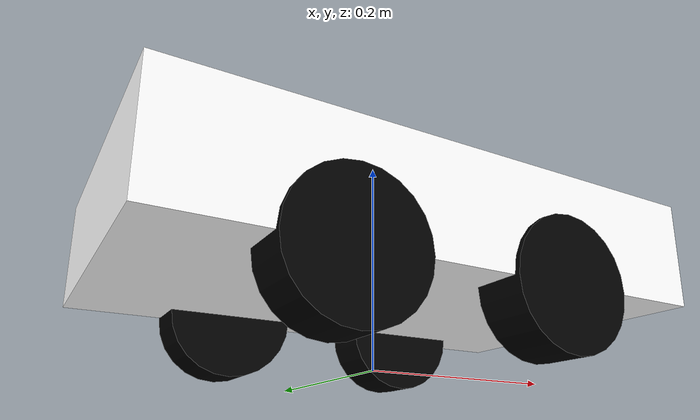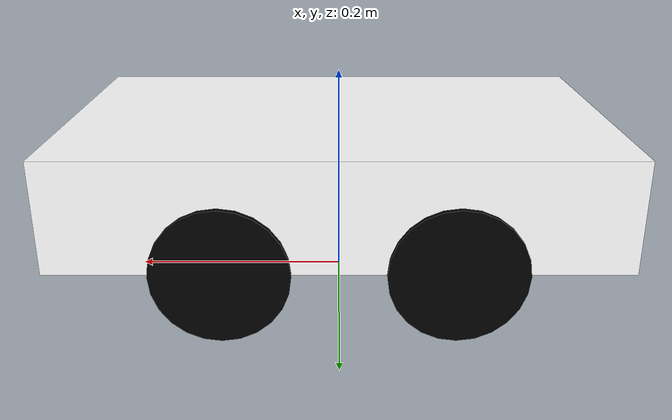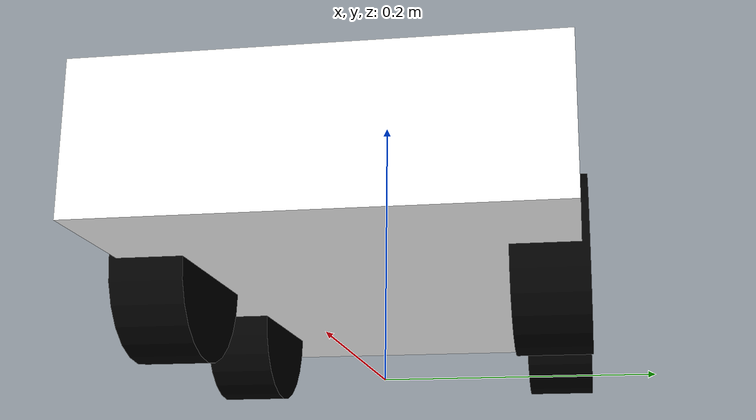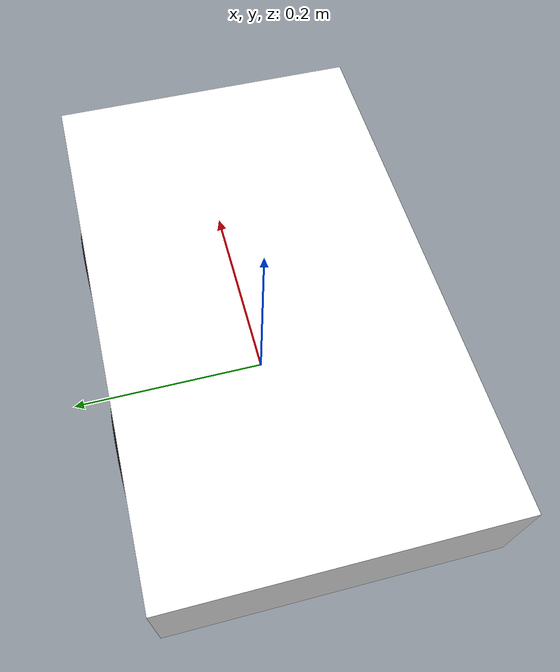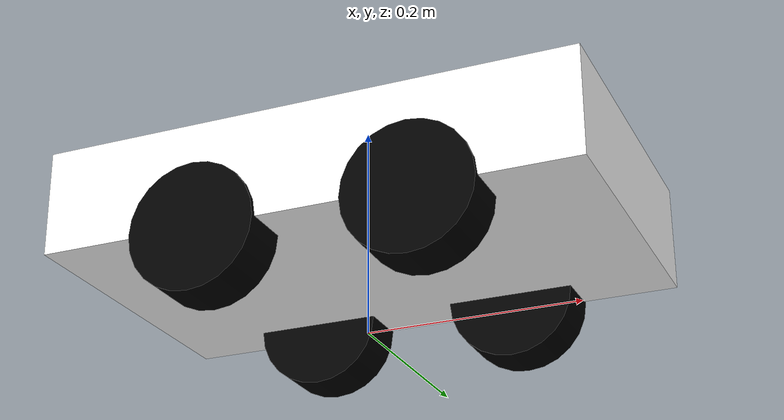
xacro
<?xml version="1.0"?>

<robot name="robot" xmlns:xacro="http://www.ros.org/wiki/xacro">

    <xacro:property name="length_wheel" value="0.05" />
    <xacro:property name="radius_wheel" value="0.06" />
    <xacro:property name="PI" value="3.1415926"/>
    <xacro:macro name="default_inertial" params="mass">
        <inertial>
            <mass value="${mass}" />
            <inertia ixx="0.01" ixy="0.0" ixz="0.0"
                     iyy="0.01" iyz="0.0" izz="0.01" />
        </inertial>
    </xacro:macro>

    <link name="base_footprint"/>

    <joint name="base_to_footprint" type="fixed">
        <parent link="base_footprint"/>
        <child link="base_link"/>
        <origin rpy="0 0 0" xyz="0 0 0.06"/>
    </joint>

    <link name="base_link">
        <visual>
            <geometry>
                <box size="0.3 0.5 0.1"/>
            </geometry>
            <origin rpy="0 0 ${PI/2}" xyz="0 0 0.05"/>
            <material name="white">
                <color rgba="1 1 1 1"/>
            </material>
        </visual>
        <collision>
            <geometry>
                <box size="0.3 0.5 0.1"/>
            </geometry>
        </collision>
        <xacro:default_inertial mass="8.2"/>
    </link>

    <link name="wheel_1">
        <visual>
            <geometry>
                <cylinder length="${length_wheel}" radius="${radius_wheel}"/>
            </geometry>
            <origin rpy="0 0 0" xyz="0 0 0"/>
            <material name="black">
                <color rgba="0 0 0 1"/>
            </material>
        </visual>
        <collision>
            <geometry>
                <cylinder length="${length_wheel}" radius="${radius_wheel}"/>
            </geometry>
        </collision>
        <mu1>0.5</mu1>
        <mu2>0.5</mu2>
        <xacro:default_inertial mass="0.5"/>
    </link>

    <link name="wheel_2">
        <visual>
            <geometry>
                <cylinder length="${length_wheel}" radius="${radius_wheel}"/>
            </geometry>
            <origin rpy="0 0 0" xyz="0 0 0"/>
            <material name="black"/>
        </visual>
        <collision>
            <geometry>
                <cylinder length="${length_wheel}" radius="${radius_wheel}"/>
            </geometry>
        </collision>
        <mu1>0.5</mu1>
        <mu2>0.5</mu2>
        <xacro:default_inertial mass="0.5"/>
    </link>

    <link name="wheel_3">
        <visual>
            <geometry>
                <cylinder length="${length_wheel}" radius="${radius_wheel}"/>
            </geometry>
            <origin rpy="0 0 0" xyz="0 0 0"/>
            <material name="black"/>
        </visual>
        <collision>
            <geometry>
                <cylinder length="${length_wheel}" radius="${radius_wheel}"/>
            </geometry>
        </collision>
        <mu1>0.5</mu1>
        <mu2>0.5</mu2>
        <xacro:default_inertial mass="0.5"/>
    </link>

    <link name="wheel_4">
        <visual>
            <geometry>
                <cylinder length="${length_wheel}" radius="${radius_wheel}"/>
            </geometry>
            <origin rpy="0 0 0" xyz="0 0 0" />
            <material name="black"/>
        </visual>
        <collision>
            <geometry>
                <cylinder length="${length_wheel}" radius="${radius_wheel}"/>
            </geometry>
        </collision>
        <mu1>0.5</mu1>
        <mu2>0.5</mu2>
        <xacro:default_inertial mass="0.5"/>
    </link>

    <joint name="base_to_wheel1" type="continuous">
        <parent link="base_link"/>
        <child link="wheel_1"/>
        <origin rpy="${-PI/2} 0 0" xyz="0.1 0.13 0"/>
        <axis xyz="0 0 1" />
    </joint>

    <joint name="base_to_wheel2" type="continuous">
        <axis xyz="0 0 1" />
        <anchor xyz="0 0 0" />
        <limit effort="100" velocity="100" />
        <parent link="base_link"/>
        <child link="wheel_2"/>
        <origin rpy="${-PI/2} 0 0" xyz="-0.1 0.13 0"/>
    </joint>

    <joint name="base_to_wheel3" type="continuous">
        <parent link="base_link"/>
        <axis xyz="0 0 1" />
        <child link="wheel_3"/>
        <origin rpy="${-PI/2} 0 0" xyz="0.1 -0.13 0"/>
    </joint>

    <joint name="base_to_wheel4" type="continuous">
        <parent link="base_link"/>
        <axis xyz="0 0 1" />
        <child link="wheel_4"/>
        <origin rpy="${-PI/2} 0 0" xyz="-0.1 -0.13 0"/>
    </joint>

    <!-- IMU -->

    <!-- Camera -->

    <!-- Livox-Mid360 -->
    <!-- 125 qian -->
    <link name="livox_frame">

    </link>

    <joint name="livox_joint" type="fixed">
        <origin xyz="0 0.0 0.0" rpy="0 0 0"/>
      <parent link="base_link"/>
      <child link="livox_frame"/>
    </joint>

    <!-- 142 hou-->

    <!-- gazebo插件设置相关 -->

</robot>
